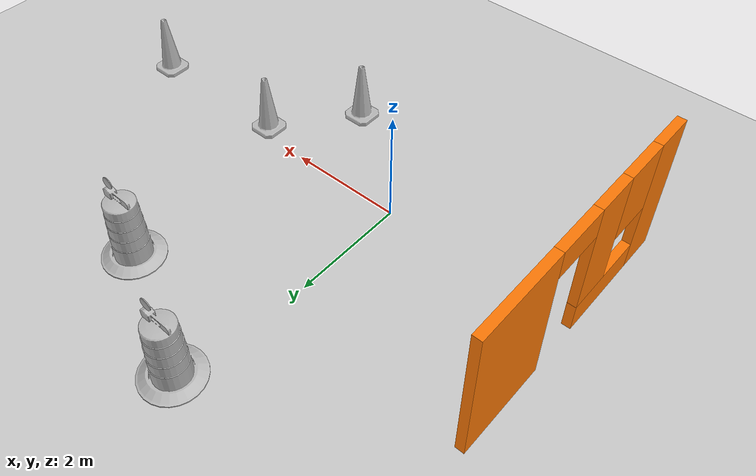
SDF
<sdf version="1.7">
 <world name="default">
  <light name="sun" type="directional">
   <pose>0 0 10 0 -0 0</pose>
   <diffuse>0.8 0.8 0.8 1</diffuse>
   <specular>0.2 0.2 0.2 1</specular>
   <attenuation>
    <range>1000</range>
    <constant>0.9</constant>
    <linear>0.01</linear>
    <quadratic>0.001</quadratic>
   </attenuation>
   <direction>-0.5 0.1 -0.9</direction>
   <spot><inner_angle>0</inner_angle><outer_angle>0</outer_angle><falloff>0</falloff></spot>
  </light>
  <model name="ground_plane">
   <static>1</static>
   <link name="link">
    <collision name="collision">
     <geometry><plane><normal>0 0 1</normal><size>100 100</size></plane></geometry>
     <surface><friction><ode><mu>100</mu><mu2>50</mu2></ode></friction></surface>
    </collision>
    <visual name="visual">
     <cast_shadows>0</cast_shadows>
     <geometry><plane><normal>0 0 1</normal><size>100 100</size></plane></geometry>
     <material>
      <script><uri>file://media/materials/scripts/gazebo.material</uri><name>Gazebo/Grey</name></script>
     </material>
    </visual>
   </link>
  </model>
  <gravity>0 0 -9.8</gravity>
  <magnetic_field>6e-06 2.3e-05 -4.2e-05</magnetic_field>
  <atmosphere type="adiabatic"/>
  <physics type="ode">
   <max_step_size>0.001</max_step_size>
   <real_time_factor>1</real_time_factor>
   <real_time_update_rate>1000</real_time_update_rate>
  </physics>
  <scene><ambient>0.4 0.4 0.4 1</ambient><background>0.7 0.7 0.7 1</background><shadows>1</shadows></scene>
  <audio><device>default</device></audio>
  <spherical_coordinates>
   <surface_model>EARTH_WGS84</surface_model>
   <latitude_deg>0</latitude_deg>
   <longitude_deg>0</longitude_deg>
   <elevation>0</elevation>
   <heading_deg>0</heading_deg>
  </spherical_coordinates>
  <model name="Construction Cone">
   <link name="link">
    <collision name="collision">
     <geometry>
      <mesh><scale>10 10 10</scale><uri>model://construction_cone/meshes/construction_cone.dae</uri></mesh>
     </geometry>
    </collision>
    <visual name="visual">
     <geometry>
      <mesh><scale>10 10 10</scale><uri>model://construction_cone/meshes/construction_cone.dae</uri></mesh>
     </geometry>
    </visual>
    <inertial>
     <inertia><ixx>1</ixx><ixy>0</ixy><ixz>0</ixz><iyy>1</iyy><iyz>0</iyz><izz>1</izz></inertia>
     <mass>1</mass>
    </inertial>
   </link>
   <pose>2.97212 -0.183721 -0 0 -0 0</pose>
  </model>
  <model name="Construction Cone_0">
   <link name="link">
    <collision name="collision">
     <geometry>
      <mesh><scale>10 10 10</scale><uri>model://construction_cone/meshes/construction_cone.dae</uri></mesh>
     </geometry>
    </collision>
    <visual name="visual">
     <geometry>
      <mesh><scale>10 10 10</scale><uri>model://construction_cone/meshes/construction_cone.dae</uri></mesh>
     </geometry>
    </visual>
    <inertial>
     <inertia><ixx>1</ixx><ixy>0</ixy><ixz>0</ixz><iyy>1</iyy><iyz>0</iyz><izz>1</izz></inertia>
     <mass>1</mass>
    </inertial>
   </link>
   <pose>1.94256 -1.51874 -0 0 -0 0</pose>
  </model>
  <model name="Construction Cone_1">
   <link name="link">
    <collision name="collision">
     <geometry>
      <mesh><scale>10 10 10</scale><uri>model://construction_cone/meshes/construction_cone.dae</uri></mesh>
     </geometry>
    </collision>
    <visual name="visual">
     <geometry>
      <mesh><scale>10 10 10</scale><uri>model://construction_cone/meshes/construction_cone.dae</uri></mesh>
     </geometry>
    </visual>
    <inertial>
     <inertia><ixx>1</ixx><ixy>0</ixy><ixz>0</ixz><iyy>1</iyy><iyz>0</iyz><izz>1</izz></inertia>
     <mass>1</mass>
    </inertial>
   </link>
   <pose>5.6144 -0.181137 0 -0 -0 -0</pose>
  </model>
  <model name="Construction Barrel">
   <link name="link">
    <inertial>
     <pose>0 0 0.4 0 -0 0</pose>
     <mass>500</mass>
     <inertia><ixx>51.2096</ixx><iyy>51.2096</iyy><izz>25</izz><ixy>0</ixy><ixz>0</ixz><iyz>0</iyz></inertia>
    </inertial>
    <collision name="collision">
     <geometry><mesh><uri>model://construction_barrel/meshes/construction_barrel.dae</uri></mesh></geometry>
    </collision>
    <visual name="visual">
     <geometry><mesh><uri>model://construction_barrel/meshes/construction_barrel.dae</uri></mesh></geometry>
    </visual>
   </link>
   <pose>2.433 3.24602 -0 0 0 -1.8e-05</pose>
  </model>
  <model name="Construction Barrel_0">
   <link name="link">
    <inertial>
     <pose>0 0 0.4 0 -0 0</pose>
     <mass>500</mass>
     <inertia><ixx>51.2096</ixx><iyy>51.2096</iyy><izz>25</izz><ixy>0</ixy><ixz>0</ixz><iyz>0</iyz></inertia>
    </inertial>
    <collision name="collision">
     <geometry><mesh><uri>model://construction_barrel/meshes/construction_barrel.dae</uri></mesh></geometry>
    </collision>
    <visual name="visual">
     <geometry><mesh><uri>model://construction_barrel/meshes/construction_barrel.dae</uri></mesh></geometry>
    </visual>
   </link>
   <pose>0.318956 4.255 -0 1e-06 -1e-06 -7e-06</pose>
  </model>
  <model name="nig">
   <pose>-5.80014 0.204388 0 0 -0 0</pose>
   <link name="Wall_0">
    <pose>2.4875 -0 0 0 -0 1.5708</pose>
    <visual name="Wall_0_Visual_0">
     <pose>-2.0375 0 1.25 0 -0 0</pose>
     <geometry><box><size>0.675 0.15 2.5</size></box></geometry>
     <material>
      <script><uri>file://media/materials/scripts/gazebo.material</uri><name>Gazebo/Grey</name></script>
      <ambient>0.996078 0.47451 0.0196078 1</ambient>
     </material>
     <meta><layer>0</layer></meta>
    </visual>
    <collision name="Wall_0_Collision_0">
     <geometry><box><size>0.675 0.15 2.5</size></box></geometry>
     <pose>-2.0375 0 1.25 0 -0 0</pose>
    </collision>
    <visual name="Wall_0_Visual_1">
     <pose>1.5525 0 1.25 0 -0 0</pose>
     <geometry><box><size>1.645 0.15 2.5</size></box></geometry>
     <material>
      <script><uri>file://media/materials/scripts/gazebo.material</uri><name>Gazebo/Grey</name></script>
      <ambient>0.996078 0.47451 0.0196078 1</ambient>
     </material>
     <meta><layer>0</layer></meta>
    </visual>
    <collision name="Wall_0_Collision_1">
     <geometry><box><size>1.645 0.15 2.5</size></box></geometry>
     <pose>1.5525 0 1.25 0 -0 0</pose>
    </collision>
    <visual name="Wall_0_Visual_2">
     <pose>-0.935 0 0.25 0 -0 0</pose>
     <geometry><box><size>1.53 0.15 0.5</size></box></geometry>
     <material>
      <script><uri>file://media/materials/scripts/gazebo.material</uri><name>Gazebo/Grey</name></script>
      <ambient>0.996078 0.47451 0.0196078 1</ambient>
     </material>
     <meta><layer>0</layer></meta>
    </visual>
    <collision name="Wall_0_Collision_2">
     <geometry><box><size>1.53 0.15 0.5</size></box></geometry>
     <pose>-0.935 0 0.25 0 -0 0</pose>
    </collision>
    <visual name="Wall_0_Visual_3">
     <pose>-0.535 0 1.5 0 -0 0</pose>
     <geometry><box><size>0.73 0.15 2</size></box></geometry>
     <material>
      <script><uri>file://media/materials/scripts/gazebo.material</uri><name>Gazebo/Grey</name></script>
      <ambient>0.996078 0.47451 0.0196078 1</ambient>
     </material>
     <meta><layer>0</layer></meta>
    </visual>
    <collision name="Wall_0_Collision_3">
     <geometry><box><size>0.73 0.15 2</size></box></geometry>
     <pose>-0.535 0 1.5 0 -0 0</pose>
    </collision>
    <visual name="Wall_0_Visual_4">
     <pose>-1.3 0 1.9 0 -0 0</pose>
     <geometry><box><size>0.8 0.15 1.2</size></box></geometry>
     <material>
      <script><uri>file://media/materials/scripts/gazebo.material</uri><name>Gazebo/Grey</name></script>
      <ambient>0.996078 0.47451 0.0196078 1</ambient>
     </material>
     <meta><layer>0</layer></meta>
    </visual>
    <collision name="Wall_0_Collision_4">
     <geometry><box><size>0.8 0.15 1.2</size></box></geometry>
     <pose>-1.3 0 1.9 0 -0 0</pose>
    </collision>
    <visual name="Wall_0_Visual_5">
     <pose>0.28 0 2.25 0 -0 0</pose>
     <geometry><box><size>0.9 0.15 0.5</size></box></geometry>
     <material>
      <script><uri>file://media/materials/scripts/gazebo.material</uri><name>Gazebo/Grey</name></script>
      <ambient>0.996078 0.47451 0.0196078 1</ambient>
     </material>
     <meta><layer>0</layer></meta>
    </visual>
    <collision name="Wall_0_Collision_5">
     <geometry><box><size>0.9 0.15 0.5</size></box></geometry>
     <pose>0.28 0 2.25 0 -0 0</pose>
    </collision>
   </link>
   <static>1</static>
  </model>
 </world>
</sdf>
